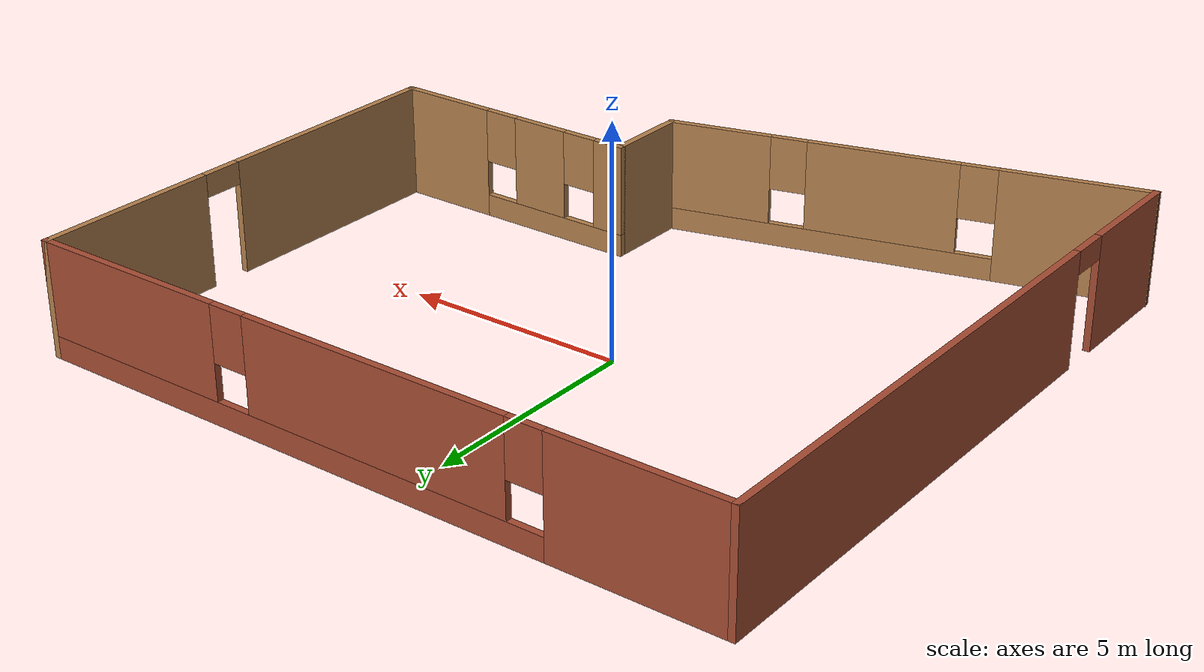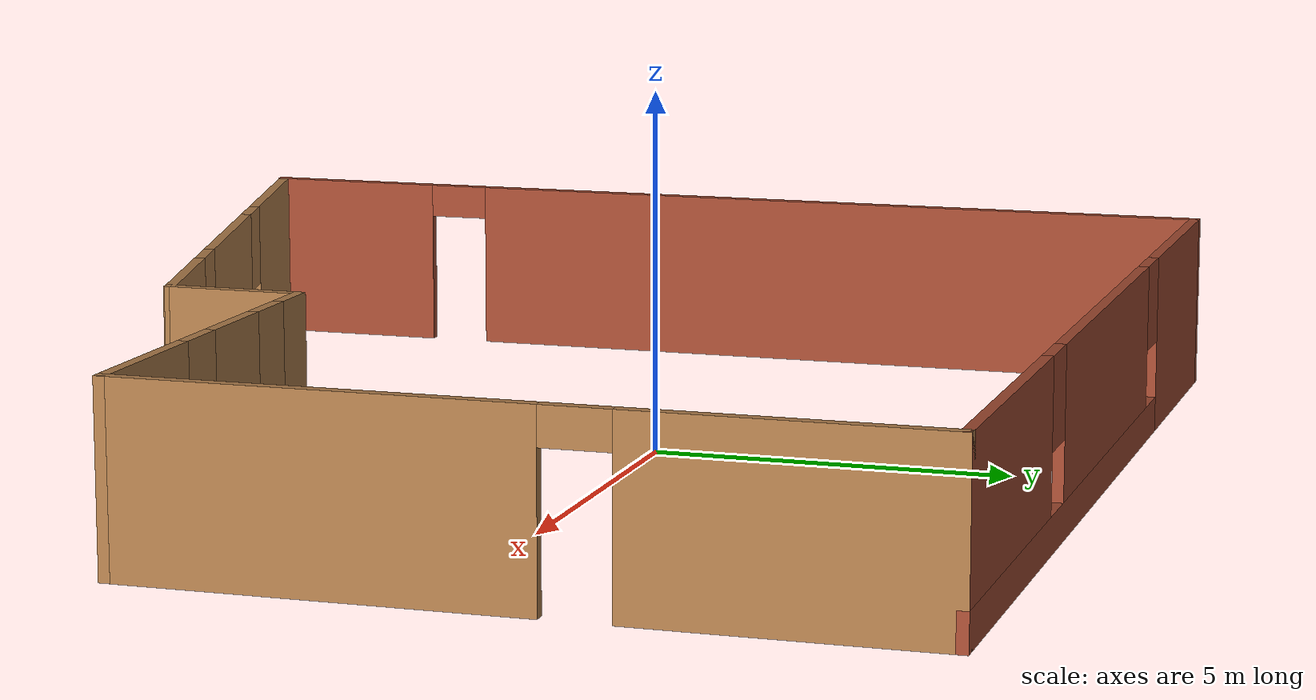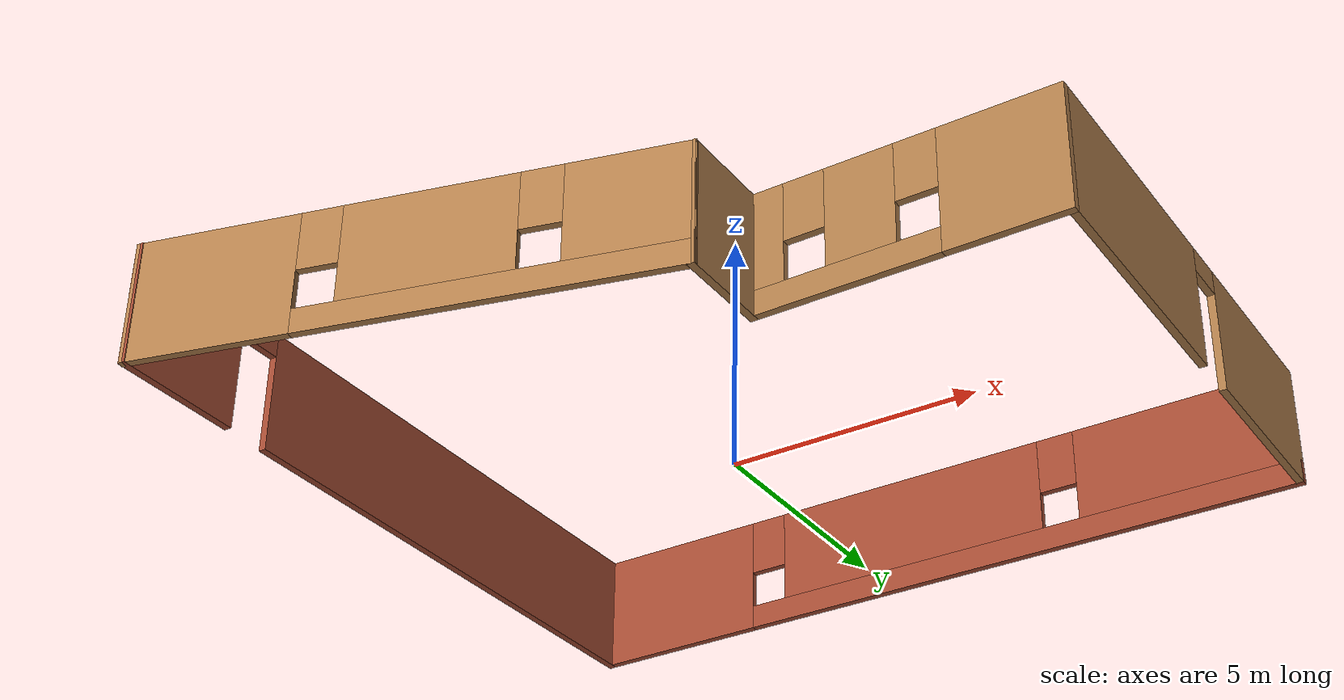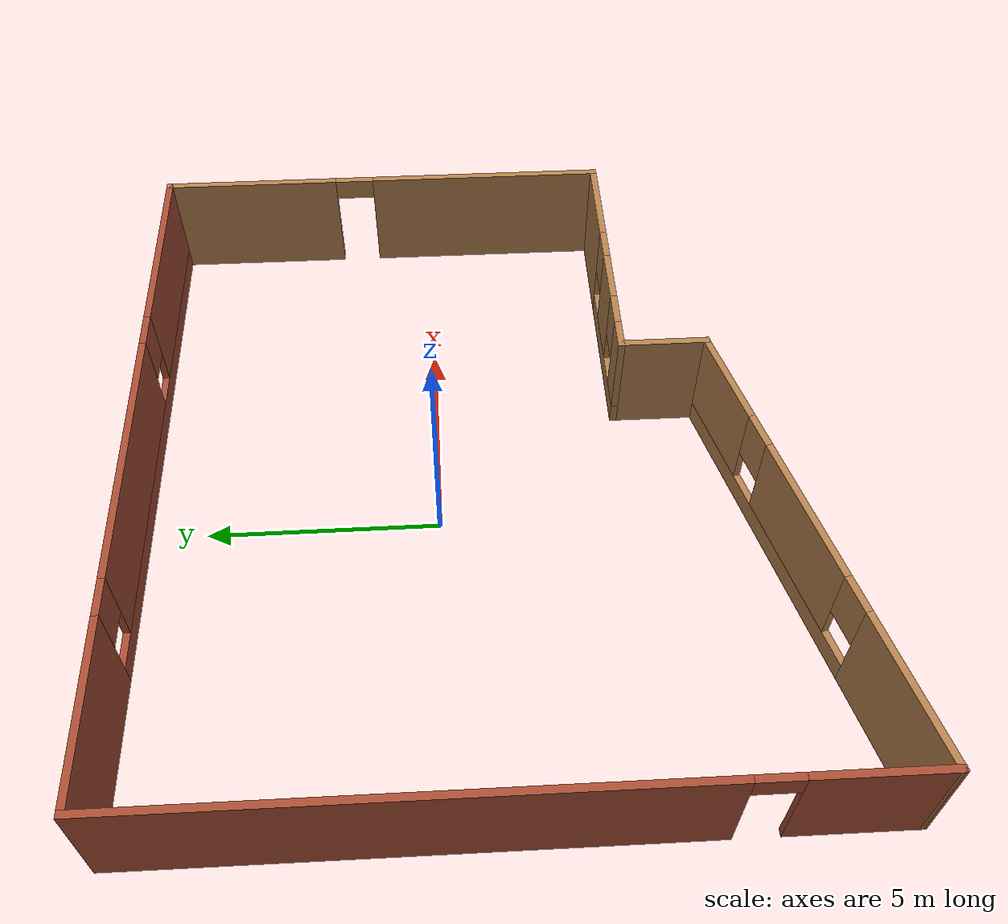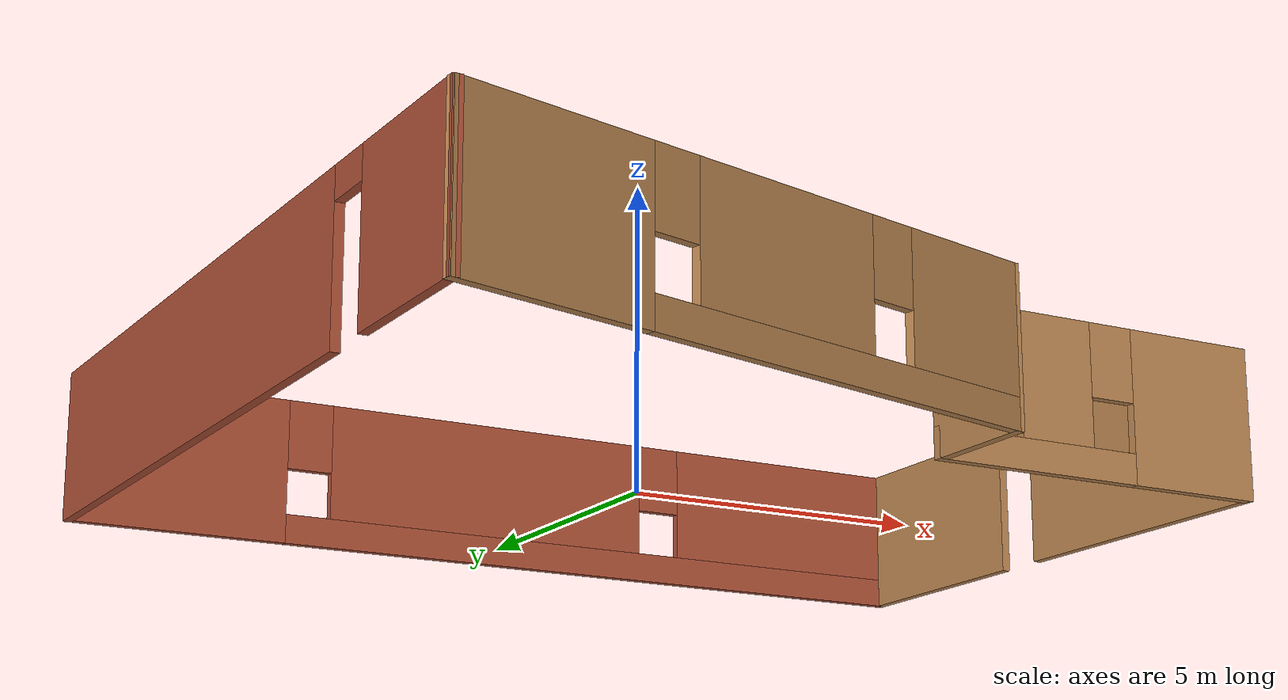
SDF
<?xml version='1.0'?>
<sdf version='1.6'>
  <model name='my_lab'>
    <pose frame=''>0.790862 -1.15917 0 0 -0 0</pose>
    <link name='Wall_0'>
      <pose frame=''>-7.91665 0.008354 0 0 -0 1.5708</pose>
      <visual name='Wall_0_Visual_0'>
        <pose frame=''>-6.16008 0 1.25 0 -0 0</pose>
        <geometry>
          <box>
            <size>2.67984 0.15 2.5</size>
          </box>
        </geometry>
        <material>
          <script>
            <uri>file://media/materials/scripts/gazebo.material</uri>
            <name>Gazebo/Bricks</name>
          </script>
          <ambient>1 1 1 1</ambient>
        </material>
      </visual>
      <collision name='Wall_0_Collision_0'>
        <geometry>
          <box>
            <size>2.67984 0.15 2.5</size>
          </box>
        </geometry>
        <pose frame=''>-6.16008 0 1.25 0 -0 0</pose>
      </collision>
      <visual name='Wall_0_Visual_1'>
        <pose frame=''>1.78992 0 1.25 0 -0 0</pose>
        <geometry>
          <box>
            <size>11.4202 0.15 2.5</size>
          </box>
        </geometry>
        <material>
          <script>
            <uri>file://media/materials/scripts/gazebo.material</uri>
            <name>Gazebo/Bricks</name>
          </script>
          <ambient>1 1 1 1</ambient>
        </material>
      </visual>
      <collision name='Wall_0_Collision_1'>
        <geometry>
          <box>
            <size>11.4202 0.15 2.5</size>
          </box>
        </geometry>
        <pose frame=''>1.78992 0 1.25 0 -0 0</pose>
      </collision>
      <visual name='Wall_0_Visual_2'>
        <pose frame=''>-4.37016 0 2.25 0 -0 0</pose>
        <geometry>
          <box>
            <size>0.9 0.15 0.5</size>
          </box>
        </geometry>
        <material>
          <script>
            <uri>file://media/materials/scripts/gazebo.material</uri>
            <name>Gazebo/Bricks</name>
          </script>
          <ambient>1 1 1 1</ambient>
        </material>
      </visual>
      <collision name='Wall_0_Collision_2'>
        <geometry>
          <box>
            <size>0.9 0.15 0.5</size>
          </box>
        </geometry>
        <pose frame=''>-4.37016 0 2.25 0 -0 0</pose>
      </collision>
    </link>
    <link name='Wall_2'>
      <pose frame=''>0.008354 7.43335 0 0 -0 0</pose>
      <visual name='Wall_2_Visual_0'>
        <pose frame=''>-6.10103 0 1.25 0 -0 0</pose>
        <geometry>
          <box>
            <size>3.79794 0.15 2.5</size>
          </box>
        </geometry>
        <material>
          <script>
            <uri>file://media/materials/scripts/gazebo.material</uri>
            <name>Gazebo/Bricks</name>
          </script>
          <ambient>1 1 1 1</ambient>
        </material>
      </visual>
      <collision name='Wall_2_Collision_0'>
        <geometry>
          <box>
            <size>3.79794 0.15 2.5</size>
          </box>
        </geometry>
        <pose frame=''>-6.10103 0 1.25 0 -0 0</pose>
      </collision>
      <visual name='Wall_2_Visual_1'>
        <pose frame=''>1.89897 0 0.25 0 -0 0</pose>
        <geometry>
          <box>
            <size>12.2021 0.15 0.5</size>
          </box>
        </geometry>
        <material>
          <script>
            <uri>file://media/materials/scripts/gazebo.material</uri>
            <name>Gazebo/Bricks</name>
          </script>
          <ambient>1 1 1 1</ambient>
        </material>
      </visual>
      <collision name='Wall_2_Collision_1'>
        <geometry>
          <box>
            <size>12.2021 0.15 0.5</size>
          </box>
        </geometry>
        <pose frame=''>1.89897 0 0.25 0 -0 0</pose>
      </collision>
      <visual name='Wall_2_Visual_2'>
        <pose frame=''>-0.389716 0 1.5 0 -0 0</pose>
        <geometry>
          <box>
            <size>6.02468 0.15 2</size>
          </box>
        </geometry>
        <material>
          <script>
            <uri>file://media/materials/scripts/gazebo.material</uri>
            <name>Gazebo/Bricks</name>
          </script>
          <ambient>1 1 1 1</ambient>
        </material>
      </visual>
      <collision name='Wall_2_Collision_2'>
        <geometry>
          <box>
            <size>6.02468 0.15 2</size>
          </box>
        </geometry>
        <pose frame=''>-0.389716 0 1.5 0 -0 0</pose>
      </collision>
      <visual name='Wall_2_Visual_3'>
        <pose frame=''>5.71131 0 1.5 0 -0 0</pose>
        <geometry>
          <box>
            <size>4.57738 0.15 2</size>
          </box>
        </geometry>
        <material>
          <script>
            <uri>file://media/materials/scripts/gazebo.material</uri>
            <name>Gazebo/Bricks</name>
          </script>
          <ambient>1 1 1 1</ambient>
        </material>
      </visual>
      <collision name='Wall_2_Collision_3'>
        <geometry>
          <box>
            <size>4.57738 0.15 2</size>
          </box>
        </geometry>
        <pose frame=''>5.71131 0 1.5 0 -0 0</pose>
      </collision>
      <visual name='Wall_2_Visual_4'>
        <pose frame=''>-3.80206 0 1.9 0 -0 0</pose>
        <geometry>
          <box>
            <size>0.8 0.15 1.2</size>
          </box>
        </geometry>
        <material>
          <script>
            <uri>file://media/materials/scripts/gazebo.material</uri>
            <name>Gazebo/Bricks</name>
          </script>
          <ambient>1 1 1 1</ambient>
        </material>
      </visual>
      <collision name='Wall_2_Collision_4'>
        <geometry>
          <box>
            <size>0.8 0.15 1.2</size>
          </box>
        </geometry>
        <pose frame=''>-3.80206 0 1.9 0 -0 0</pose>
      </collision>
      <visual name='Wall_2_Visual_5'>
        <pose frame=''>3.02262 0 1.9 0 -0 0</pose>
        <geometry>
          <box>
            <size>0.8 0.15 1.2</size>
          </box>
        </geometry>
        <material>
          <script>
            <uri>file://media/materials/scripts/gazebo.material</uri>
            <name>Gazebo/Bricks</name>
          </script>
          <ambient>1 1 1 1</ambient>
        </material>
      </visual>
      <collision name='Wall_2_Collision_5'>
        <geometry>
          <box>
            <size>0.8 0.15 1.2</size>
          </box>
        </geometry>
        <pose frame=''>3.02262 0 1.9 0 -0 0</pose>
      </collision>
    </link>
    <link name='Wall_3'>
      <pose frame=''>7.93335 2.25835 0 0 0 -1.5708</pose>
      <visual name='Wall_3_Visual_0'>
        <pose frame=''>-3.19851 0 1.25 0 -0 0</pose>
        <geometry>
          <box>
            <size>4.10298 0.15 2.5</size>
          </box>
        </geometry>
        <material>
          <script>
            <uri>file://media/materials/scripts/gazebo.material</uri>
            <name>Gazebo/Wood</name>
          </script>
          <ambient>1 1 1 1</ambient>
        </material>
      </visual>
      <collision name='Wall_3_Collision_0'>
        <geometry>
          <box>
            <size>4.10298 0.15 2.5</size>
          </box>
        </geometry>
        <pose frame=''>-3.19851 0 1.25 0 -0 0</pose>
      </collision>
      <visual name='Wall_3_Visual_1'>
        <pose frame=''>2.50149 0 1.25 0 -0 0</pose>
        <geometry>
          <box>
            <size>5.49702 0.15 2.5</size>
          </box>
        </geometry>
        <material>
          <script>
            <uri>file://media/materials/scripts/gazebo.material</uri>
            <name>Gazebo/Wood</name>
          </script>
          <ambient>1 1 1 1</ambient>
        </material>
      </visual>
      <collision name='Wall_3_Collision_1'>
        <geometry>
          <box>
            <size>5.49702 0.15 2.5</size>
          </box>
        </geometry>
        <pose frame=''>2.50149 0 1.25 0 -0 0</pose>
      </collision>
      <visual name='Wall_3_Visual_2'>
        <pose frame=''>-0.697022 0 2.25 0 -0 0</pose>
        <geometry>
          <box>
            <size>0.9 0.15 0.5</size>
          </box>
        </geometry>
        <material>
          <script>
            <uri>file://media/materials/scripts/gazebo.material</uri>
            <name>Gazebo/Wood</name>
          </script>
          <ambient>1 1 1 1</ambient>
        </material>
      </visual>
      <collision name='Wall_3_Collision_2'>
        <geometry>
          <box>
            <size>0.9 0.15 0.5</size>
          </box>
        </geometry>
        <pose frame=''>-0.697022 0 2.25 0 -0 0</pose>
      </collision>
    </link>
    <link name='Wall_4'>
      <pose frame=''>5.00835 -2.91665 0 0 -0 3.14159</pose>
      <visual name='Wall_4_Visual_0'>
        <pose frame=''>-1.83733 0 1.25 0 -0 0</pose>
        <geometry>
          <box>
            <size>2.32534 0.15 2.5</size>
          </box>
        </geometry>
        <material>
          <script>
            <uri>file://media/materials/scripts/gazebo.material</uri>
            <name>Gazebo/Wood</name>
          </script>
          <ambient>1 1 1 1</ambient>
        </material>
      </visual>
      <collision name='Wall_4_Collision_0'>
        <geometry>
          <box>
            <size>2.32534 0.15 2.5</size>
          </box>
        </geometry>
        <pose frame=''>-1.83733 0 1.25 0 -0 0</pose>
      </collision>
      <visual name='Wall_4_Visual_1'>
        <pose frame=''>1.16267 0 0.25 0 -0 0</pose>
        <geometry>
          <box>
            <size>3.67466 0.15 0.5</size>
          </box>
        </geometry>
        <material>
          <script>
            <uri>file://media/materials/scripts/gazebo.material</uri>
            <name>Gazebo/Wood</name>
          </script>
          <ambient>1 1 1 1</ambient>
        </material>
      </visual>
      <collision name='Wall_4_Collision_1'>
        <geometry>
          <box>
            <size>3.67466 0.15 0.5</size>
          </box>
        </geometry>
        <pose frame=''>1.16267 0 0.25 0 -0 0</pose>
      </collision>
      <visual name='Wall_4_Visual_2'>
        <pose frame=''>0.794845 0 1.5 0 -0 0</pose>
        <geometry>
          <box>
            <size>1.339 0.15 2</size>
          </box>
        </geometry>
        <material>
          <script>
            <uri>file://media/materials/scripts/gazebo.material</uri>
            <name>Gazebo/Wood</name>
          </script>
          <ambient>1 1 1 1</ambient>
        </material>
      </visual>
      <collision name='Wall_4_Collision_2'>
        <geometry>
          <box>
            <size>1.339 0.15 2</size>
          </box>
        </geometry>
        <pose frame=''>0.794845 0 1.5 0 -0 0</pose>
      </collision>
      <visual name='Wall_4_Visual_3'>
        <pose frame=''>2.63217 0 1.5 0 -0 0</pose>
        <geometry>
          <box>
            <size>0.735655 0.15 2</size>
          </box>
        </geometry>
        <material>
          <script>
            <uri>file://media/materials/scripts/gazebo.material</uri>
            <name>Gazebo/Wood</name>
          </script>
          <ambient>1 1 1 1</ambient>
        </material>
      </visual>
      <collision name='Wall_4_Collision_3'>
        <geometry>
          <box>
            <size>0.735655 0.15 2</size>
          </box>
        </geometry>
        <pose frame=''>2.63217 0 1.5 0 -0 0</pose>
      </collision>
      <visual name='Wall_4_Visual_4'>
        <pose frame=''>-0.274655 0 1.9 0 -0 0</pose>
        <geometry>
          <box>
            <size>0.8 0.15 1.2</size>
          </box>
        </geometry>
        <material>
          <script>
            <uri>file://media/materials/scripts/gazebo.material</uri>
            <name>Gazebo/Wood</name>
          </script>
          <ambient>1 1 1 1</ambient>
        </material>
      </visual>
      <collision name='Wall_4_Collision_4'>
        <geometry>
          <box>
            <size>0.8 0.15 1.2</size>
          </box>
        </geometry>
        <pose frame=''>-0.274655 0 1.9 0 -0 0</pose>
      </collision>
      <visual name='Wall_4_Visual_5'>
        <pose frame=''>1.86434 0 1.9 0 -0 0</pose>
        <geometry>
          <box>
            <size>0.8 0.15 1.2</size>
          </box>
        </geometry>
        <material>
          <script>
            <uri>file://media/materials/scripts/gazebo.material</uri>
            <name>Gazebo/Wood</name>
          </script>
          <ambient>1 1 1 1</ambient>
        </material>
      </visual>
      <collision name='Wall_4_Collision_5'>
        <geometry>
          <box>
            <size>0.8 0.15 1.2</size>
          </box>
        </geometry>
        <pose frame=''>1.86434 0 1.9 0 -0 0</pose>
      </collision>
    </link>
    <link name='Wall_5'>
      <collision name='Wall_5_Collision'>
        <geometry>
          <box>
            <size>2 0.15 2.5</size>
          </box>
        </geometry>
        <pose frame=''>0 0 1.25 0 -0 0</pose>
      </collision>
      <visual name='Wall_5_Visual'>
        <pose frame=''>0 0 1.25 0 -0 0</pose>
        <geometry>
          <box>
            <size>2 0.15 2.5</size>
          </box>
        </geometry>
        <material>
          <script>
            <uri>file://media/materials/scripts/gazebo.material</uri>
            <name>Gazebo/Wood</name>
          </script>
          <ambient>1 1 1 1</ambient>
        </material>
      </visual>
      <pose frame=''>2.08335 -3.84165 0 0 0 -1.5708</pose>
    </link>
    <link name='Wall_7'>
      <pose frame=''>-2.91665 -6.09165 0 0 -0 0.259046</pose>
      <visual name='Wall_7_Visual_0'>
        <pose frame=''>-3.62853 0 1.25 0 -0 0</pose>
        <geometry>
          <box>
            <size>3.23811 0.15 2.5</size>
          </box>
        </geometry>
        <material>
          <script>
            <uri>file://media/materials/scripts/gazebo.material</uri>
            <name>Gazebo/Wood</name>
          </script>
          <ambient>1 1 1 1</ambient>
        </material>
      </visual>
      <collision name='Wall_7_Collision_0'>
        <geometry>
          <box>
            <size>3.23811 0.15 2.5</size>
          </box>
        </geometry>
        <pose frame=''>-3.62853 0 1.25 0 -0 0</pose>
      </collision>
      <visual name='Wall_7_Visual_1'>
        <pose frame=''>1.61905 0 0.25 0 -0 0</pose>
        <geometry>
          <box>
            <size>7.25706 0.15 0.5</size>
          </box>
        </geometry>
        <material>
          <script>
            <uri>file://media/materials/scripts/gazebo.material</uri>
            <name>Gazebo/Wood</name>
          </script>
          <ambient>1 1 1 1</ambient>
        </material>
      </visual>
      <collision name='Wall_7_Collision_1'>
        <geometry>
          <box>
            <size>7.25706 0.15 0.5</size>
          </box>
        </geometry>
        <pose frame=''>1.61905 0 0.25 0 -0 0</pose>
      </collision>
      <visual name='Wall_7_Visual_2'>
        <pose frame=''>0.44247 0 1.5 0 -0 0</pose>
        <geometry>
          <box>
            <size>3.3039 0.15 2</size>
          </box>
        </geometry>
        <material>
          <script>
            <uri>file://media/materials/scripts/gazebo.material</uri>
            <name>Gazebo/Wood</name>
          </script>
          <ambient>1 1 1 1</ambient>
        </material>
      </visual>
      <collision name='Wall_7_Collision_2'>
        <geometry>
          <box>
            <size>3.3039 0.15 2</size>
          </box>
        </geometry>
        <pose frame=''>0.44247 0 1.5 0 -0 0</pose>
      </collision>
      <visual name='Wall_7_Visual_3'>
        <pose frame=''>4.071 0 1.5 0 -0 0</pose>
        <geometry>
          <box>
            <size>2.35317 0.15 2</size>
          </box>
        </geometry>
        <material>
          <script>
            <uri>file://media/materials/scripts/gazebo.material</uri>
            <name>Gazebo/Wood</name>
          </script>
          <ambient>1 1 1 1</ambient>
        </material>
      </visual>
      <collision name='Wall_7_Collision_3'>
        <geometry>
          <box>
            <size>2.35317 0.15 2</size>
          </box>
        </geometry>
        <pose frame=''>4.071 0 1.5 0 -0 0</pose>
      </collision>
      <visual name='Wall_7_Visual_4'>
        <pose frame=''>-1.60948 0 1.9 0 -0 0</pose>
        <geometry>
          <box>
            <size>0.8 0.15 1.2</size>
          </box>
        </geometry>
        <material>
          <script>
            <uri>file://media/materials/scripts/gazebo.material</uri>
            <name>Gazebo/Wood</name>
          </script>
          <ambient>1 1 1 1</ambient>
        </material>
      </visual>
      <collision name='Wall_7_Collision_4'>
        <geometry>
          <box>
            <size>0.8 0.15 1.2</size>
          </box>
        </geometry>
        <pose frame=''>-1.60948 0 1.9 0 -0 0</pose>
      </collision>
      <visual name='Wall_7_Visual_5'>
        <pose frame=''>2.49442 0 1.9 0 -0 0</pose>
        <geometry>
          <box>
            <size>0.8 0.15 1.2</size>
          </box>
        </geometry>
        <material>
          <script>
            <uri>file://media/materials/scripts/gazebo.material</uri>
            <name>Gazebo/Wood</name>
          </script>
          <ambient>1 1 1 1</ambient>
        </material>
      </visual>
      <collision name='Wall_7_Collision_5'>
        <geometry>
          <box>
            <size>0.8 0.15 1.2</size>
          </box>
        </geometry>
        <pose frame=''>2.49442 0 1.9 0 -0 0</pose>
      </collision>
    </link>
    <static>1</static>
  </model>
</sdf>
